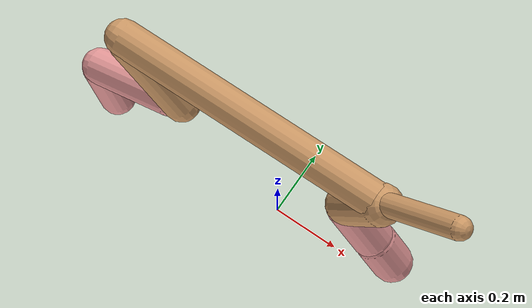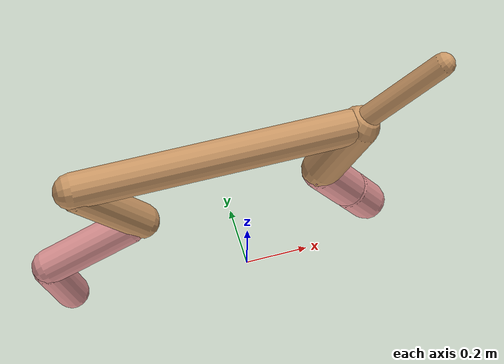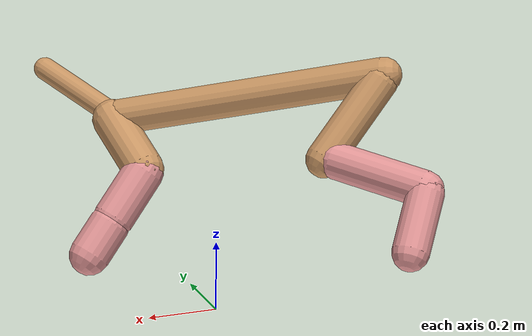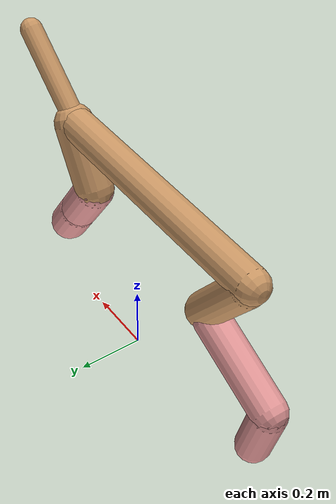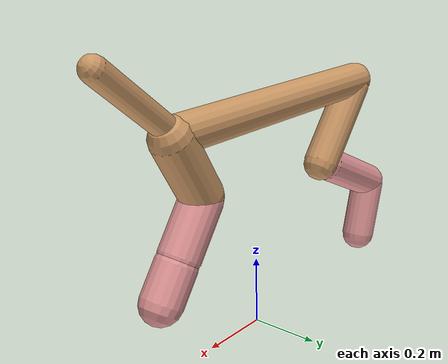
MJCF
<mujoco model="cheetah">
  <compiler angle="radian" coordinate="local" inertiafromgeom="true" settotalmass="14" />
  <default>
    <joint armature=".1" damping=".01" limited="true" solimplimit="0 .8 .03" solreflimit=".02 1" stiffness="8" />
    <geom conaffinity="0" condim="3" contype="1" friction="0.8 .1 .1" rgba="0.8 0.6 .4 1" solimp="0.0 0.8 0.01" solref="0.02 1" />
    <motor ctrllimited="true" ctrlrange="-1 1" />
  </default>
  <size nstack="300000" nuser_geom="1" />
  <option gravity="0 0 -9.81" timestep="0.01" />
  <worldbody>
    <body name="torso" pos="0.0 0.0 0.6390029084196929">
      <joint armature="0" axis="1 0 0" damping="0" limited="false" name="ignorex" pos="0 0 0" stiffness="0" type="slide" />
      <joint armature="0" axis="0 0 1" damping="0" limited="false" name="ignorez" pos="0 0 0" stiffness="0" type="slide" />
      <joint armature="0" axis="0 1 0" damping="0" limited="false" name="ignorey" pos="0 0 0" stiffness="0" type="hinge" />
      <geom fromto="-0.5 0.0 0.0 0.32494837050580283 0.0 0.0" name="torso" size="0.051464746385113454" type="capsule" />
      <geom axisangle="0 1 0 .87" name="head" pos="0.4249483705058028 0.0 0.1" size="0.033212813275763156 0.15" type="capsule" />

      <body name="bthigh" pos="-.5 0 0">
        <joint axis="0 1 0" damping="6" name="bthigh" pos="0 0 0" range="-.52 1.05" stiffness="240" type="hinge" />
        <geom axisangle="0 1 0 -3.8" name="bthigh" pos="0.0954299707186679 0.0 -0.12405896193426828" size="0.052668117822591384 0.13750459467869108" type="capsule" />
        <body name="bshin" pos="0.1508599414373358 0.0 -0.23811792386853656">
          <joint axis="0 1 0" damping="4.5" name="bshin" pos="0 0 0" range="-.785 .785" stiffness="180" type="hinge" />
          <geom axisangle="0 1 0 -2.03" name="bshin" pos="-0.1330647300066095 0.0 -0.06653236500330476" rgba="0.9 0.6 0.6 1" size="0.052668117822591384 0.14224613242623216" type="capsule" />
          <body name="bfoot" pos="-0.266129460013219 0.0 -0.1330647300066095">
            <joint axis="0 1 0" damping="3" name="bfoot" pos="0 0 0" range="-.4 .785" stiffness="120" type="hinge" />
            <geom axisangle="0 1 0 -.27" name="bfoot" pos="0.02856428592174676 0.0 -0.09235785781364787" rgba="0.9 0.6 0.6 1" size="0.052668117822591384 0.08914090965377215" type="capsule" />
            <inertial mass="10" />
          </body>
        </body>
      </body>
      <body name="fthigh" pos="0.32494837050580283 0.0 0.0">
        <joint axis="0 1 0" damping="4.5" name="fthigh" pos="0 0 0" range="-1.5 0.8" stiffness="180" type="hinge" />
        <geom axisangle="0 1 0 .52" name="fthigh" pos="-0.05369493309860947 0.0 -0.09204845674047336" size="0.05900782885876005 0.1006403959040286" type="capsule" />
        <body name="fshin" pos="-0.10738986619721894 0.0 -0.18409691348094673">
          <joint axis="0 1 0" damping="3" name="fshin" pos="0 0 0" range="-1.2 1.1" stiffness="120" type="hinge" />
          <geom axisangle="0 1 0 -.6" name="fshin" pos="0.04989998716105674 0.0 -0.06909228991530933" rgba="0.9 0.6 0.6 1" size="0.05900782885876005 0.08020963884080473" type="capsule" />
          <body name="ffoot" pos="0.09979997432211347 0.0 -0.13818457983061866">
            <joint axis="0 1 0" damping="1.5" name="ffoot" pos="0 0 0" range="-3.1 -0.3" stiffness="60" type="hinge" />
            <geom axisangle="0 1 0 -.6" name="ffoot" pos="0.03579015707010741 0.0 -0.05567357766461153" rgba="0.9 0.6 0.6 1" size="0.05900782885876005 0.052968629423172944" type="capsule" />
            <inertial mass="10" />
          </body>
        </body>
      </body>
    </body>
  </worldbody>
  <actuator>
    <motor gear="120" joint="bthigh" name="bthigh" />
    <motor gear="90" joint="bshin" name="bshin" />
    <motor gear="60" joint="bfoot" name="bfoot" />
    <motor gear="120" joint="fthigh" name="fthigh" />
    <motor gear="60" joint="fshin" name="fshin" />
    <motor gear="30" joint="ffoot" name="ffoot" />
  </actuator>
</mujoco>
